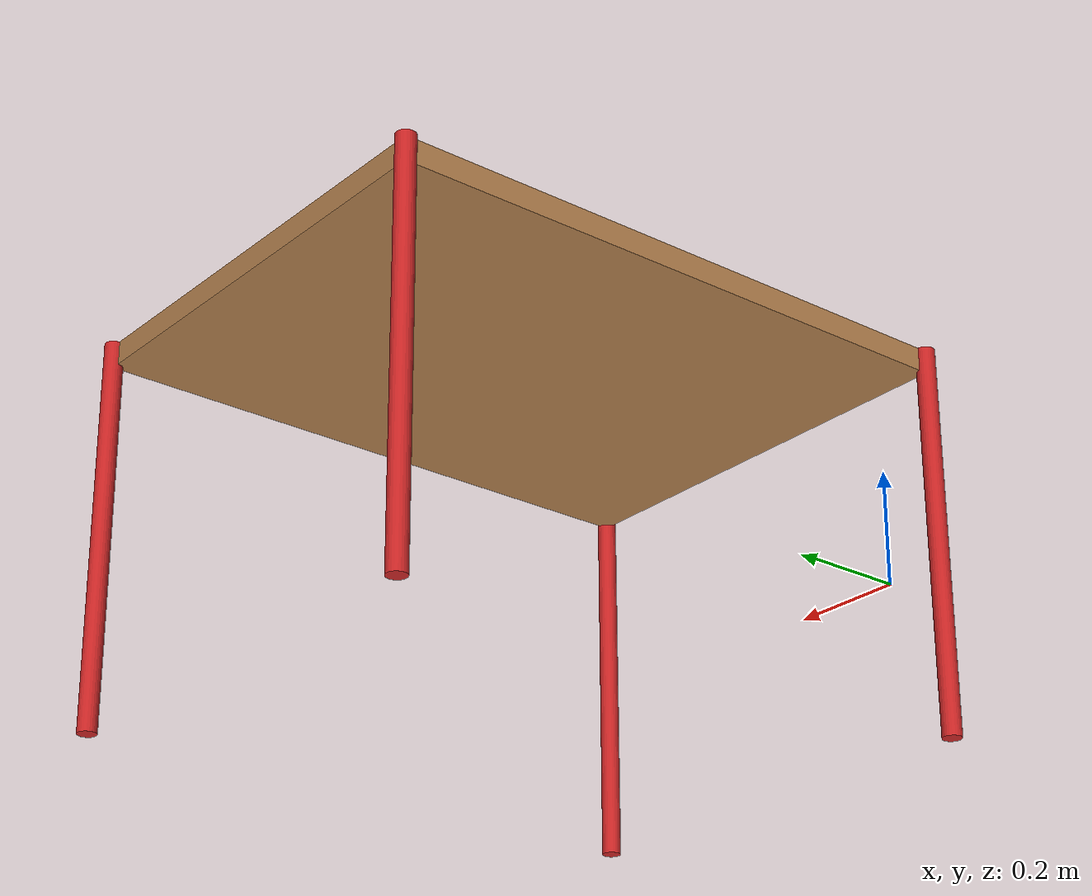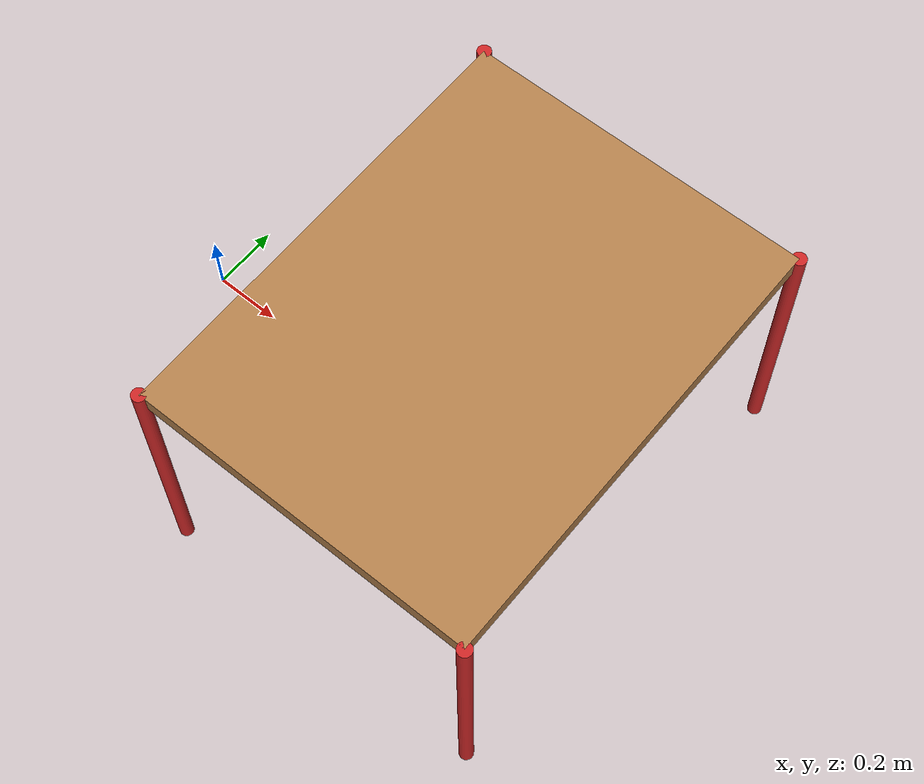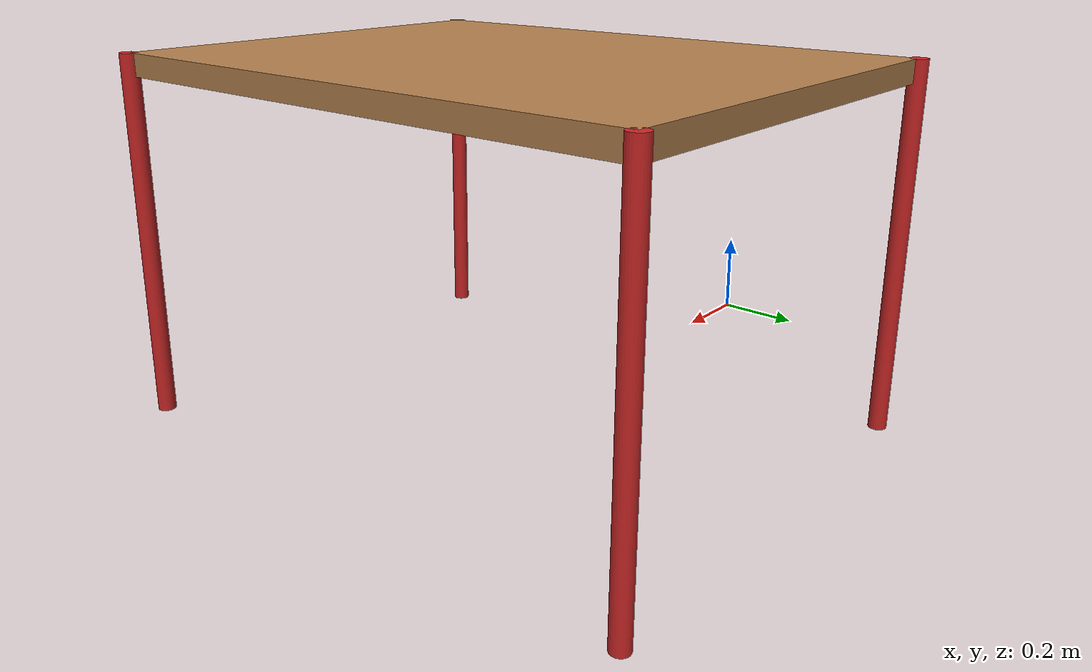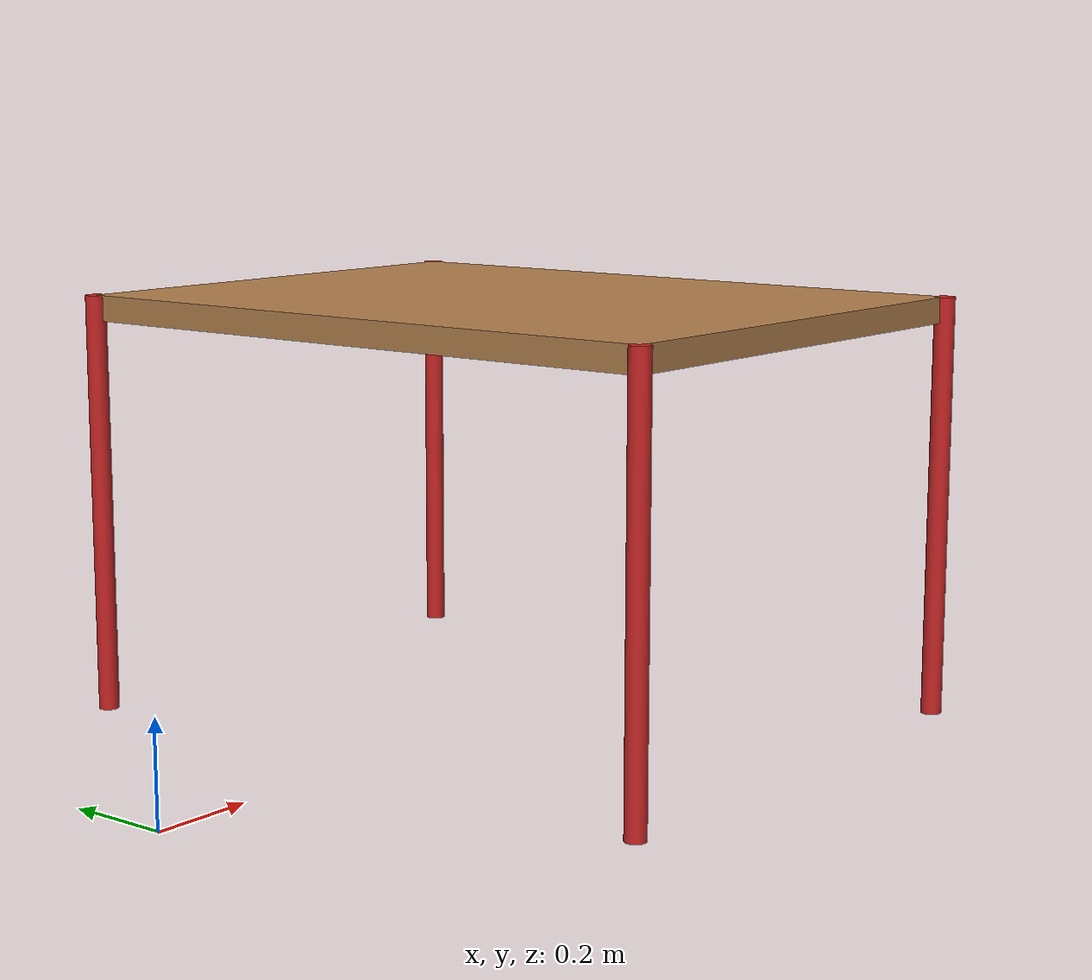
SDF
<sdf version='1.4'>
  <model name='nasa_table'>
    <link name='table_top_link'>
      <pose>0 0 0 0 -0 0</pose>
      <inertial>
        <pose>0.965 0 0.49126 0 -0 0</pose>
        <mass>10</mass>
        <inertia>
          <ixx>3.21078</ixx>
          <ixy>-1.11022e-16</ixy>
          <ixz>4.44089e-16</ixz>
          <iyy>2.52078</iyy>
          <iyz>0</iyz>
          <izz>3.73</izz>
        </inertia>
      </inertial>
      <collision name='table_top_link_collision'>
        <pose>0.965 0 0.8021 0 -0 0</pose>
        <geometry>
          <box>
            <size>1 1.3 0.05</size>
          </box>
        </geometry>
        <surface>
          <contact>
            <ode>
              <kp>100000</kp>
              <kd>1</kd>
            </ode>
          </contact>
          <friction>
            <ode>
              <mu>1</mu>
              <mu2>1</mu2>
            </ode>
          </friction>
        </surface>
      </collision>
      <collision name='table_top_link_collision_leg1_link'>
        <pose>1.465 0.65 0.41355 0 -0 0</pose>
        <geometry>
          <cylinder>
            <length>0.8271</length>
            <radius>0.02</radius>
          </cylinder>
        </geometry>
        <surface>
          <contact>
            <ode>
              <kp>100000</kp>
              <kd>1</kd>
            </ode>
          </contact>
          <friction>
            <ode>
              <mu>1</mu>
              <mu2>1</mu2>
            </ode>
          </friction>
        </surface>
        <surface>
          <contact>
            <ode>
              <kp>1e+07</kp>
              <kd>1</kd>
            </ode>
          </contact>
          <friction>
            <ode>
              <mu>1000</mu>
              <mu2>1000</mu2>
            </ode>
          </friction>
        </surface>
      </collision>
      <collision name='table_top_link_collision_leg2_link'>
        <pose>0.465 0.65 0.41355 0 -0 0</pose>
        <geometry>
          <cylinder>
            <length>0.8271</length>
            <radius>0.02</radius>
          </cylinder>
        </geometry>
        <surface>
          <contact>
            <ode>
              <kp>100000</kp>
              <kd>1</kd>
            </ode>
          </contact>
          <friction>
            <ode>
              <mu>1</mu>
              <mu2>1</mu2>
            </ode>
          </friction>
        </surface>
        <surface>
          <contact>
            <ode>
              <kp>1e+07</kp>
              <kd>1</kd>
            </ode>
          </contact>
          <friction>
            <ode>
              <mu>1000</mu>
              <mu2>1000</mu2>
            </ode>
          </friction>
        </surface>
      </collision>
      <collision name='table_top_link_collision_leg3_link'>
        <pose>1.465 -0.65 0.41355 0 -0 0</pose>
        <geometry>
          <cylinder>
            <length>0.8271</length>
            <radius>0.02</radius>
          </cylinder>
        </geometry>
        <surface>
          <contact>
            <ode>
              <kp>100000</kp>
              <kd>1</kd>
            </ode>
          </contact>
          <friction>
            <ode>
              <mu>1</mu>
              <mu2>1</mu2>
            </ode>
          </friction>
        </surface>
        <surface>
          <contact>
            <ode>
              <kp>1e+07</kp>
              <kd>1</kd>
            </ode>
          </contact>
          <friction>
            <ode>
              <mu>1000</mu>
              <mu2>1000</mu2>
            </ode>
          </friction>
        </surface>
      </collision>
      <collision name='table_top_link_collision_leg4_link'>
        <pose>0.465 -0.65 0.41355 0 -0 0</pose>
        <geometry>
          <cylinder>
            <length>0.8271</length>
            <radius>0.02</radius>
          </cylinder>
        </geometry>
        <surface>
          <contact>
            <ode>
              <kp>100000</kp>
              <kd>1</kd>
            </ode>
          </contact>
          <friction>
            <ode>
              <mu>1</mu>
              <mu2>1</mu2>
            </ode>
          </friction>
        </surface>
        <surface>
          <contact>
            <ode>
              <kp>1e+07</kp>
              <kd>1</kd>
            </ode>
          </contact>
          <friction>
            <ode>
              <mu>1000</mu>
              <mu2>1000</mu2>
            </ode>
          </friction>
        </surface>
      </collision>
      <visual name='table_top_link_visual'>
        <pose>0.965 0 0.8021 0 -0 0</pose>
        <geometry>
          <box>
            <size>1 1.3 0.05</size>
          </box>
        </geometry>
        <material>
          <script>
            <name>Gazebo/Wood</name>
            <uri>__default__</uri>
          </script>
        </material>
      </visual>
      <visual name='table_top_link_visual_leg1_link'>
        <pose>1.465 0.65 0.41355 0 -0 0</pose>
        <geometry>
          <cylinder>
            <length>0.8271</length>
            <radius>0.02</radius>
          </cylinder>
        </geometry>
        <material>
          <script>
            <name>Gazebo/Red</name>
            <uri>__default__</uri>
          </script>
        </material>
      </visual>
      <visual name='table_top_link_visual_leg2_link'>
        <pose>0.465 0.65 0.41355 0 -0 0</pose>
        <geometry>
          <cylinder>
            <length>0.8271</length>
            <radius>0.02</radius>
          </cylinder>
        </geometry>
        <material>
          <script>
            <name>Gazebo/Red</name>
            <uri>__default__</uri>
          </script>
        </material>
      </visual>
      <visual name='table_top_link_visual_leg3_link'>
        <pose>1.465 -0.65 0.41355 0 -0 0</pose>
        <geometry>
          <cylinder>
            <length>0.8271</length>
            <radius>0.02</radius>
          </cylinder>
        </geometry>
        <material>
          <script>
            <name>Gazebo/Red</name>
            <uri>__default__</uri>
          </script>
        </material>
      </visual>
      <visual name='table_top_link_visual_leg4_link'>
        <pose>0.465 -0.65 0.41355 0 -0 0</pose>
        <geometry>
          <cylinder>
            <length>0.8271</length>
            <radius>0.02</radius>
          </cylinder>
        </geometry>
        <material>
          <script>
            <name>Gazebo/Red</name>
            <uri>__default__</uri>
          </script>
        </material>
      </visual>
      <velocity_decay>
        <linear>0</linear>
        <angular>0</angular>
      </velocity_decay>
      <velocity_decay>
        <linear>0</linear>
        <angular>0</angular>
      </velocity_decay>
      <velocity_decay>
        <linear>0</linear>
        <angular>0</angular>
      </velocity_decay>
      <velocity_decay>
        <linear>0</linear>
        <angular>0</angular>
      </velocity_decay>
      <gravity>1</gravity>
      <velocity_decay>
        <linear>0</linear>
        <angular>0</angular>
      </velocity_decay>
      <self_collide>1</self_collide>
    </link>
    <static>1</static>
  </model>
</sdf>
